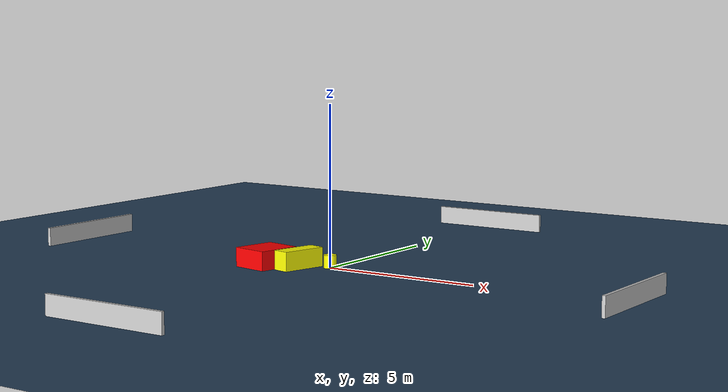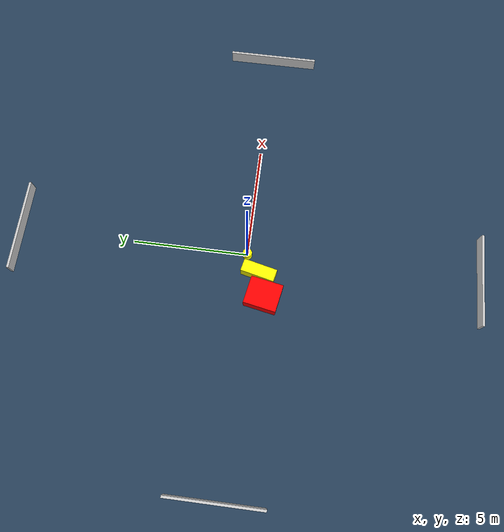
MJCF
<?xml version="1.0" ?>
<mujoco model="generated_environment">
  <option timestep="0.01" integrator="RK4" cone="elliptic"/>
  <default>
    <geom density="1"/>
  </default>
  <asset>
    <texture builtin="gradient" height="3072" name="skybox" rgb1="0.3 0.5 0.7" rgb2="0 0 0" type="skybox" width="512"/>
    <texture builtin="checker" height="300" name="groundplane" rgb1="0.2 0.3 0.4" rgb2="0.1 0.2 0.3" type="2d" width="300"/>
    <material name="groundplane" reflectance="0.2" texrepeat="5 5" texture="groundplane"/>
  </asset>
  <worldbody>
    <light dir="0 0 -1" directional="true" pos="0 0 1.5"/>
    <geom condim="3" friction="0.5 0.005 0.001" material="groundplane" name="floor" pos="0 0 0" size="0 0 0.05" type="plane"/>
    <body name="walls">
      <geom name="wall_1" condim="4" pos="-10.0 0.0 0.3" rgba="0.800000011920929 0.800000011920929 0.800000011920929 1.0" size="0.05 2.0 0.3" type="box"/>
      <geom name="wall_2" condim="4" pos="10.0 0.0 0.3" rgba="0.800000011920929 0.800000011920929 0.800000011920929 1.0" size="0.05 2.0 0.3" type="box"/>
      <geom name="wall_3" condim="4" pos="0.0 -10.0 0.3" rgba="0.800000011920929 0.800000011920929 0.800000011920929 1.0" size="2.0 0.05 0.3" type="box"/>
      <geom name="wall_4" condim="4" pos="0.0 10.0 0.3" rgba="0.800000011920929 0.800000011920929 0.800000011920929 1.0" size="2.0 0.05 0.3" type="box"/>
    </body>
    <body name="robot">
      <joint name="joint_x" type="slide" pos="0 0 0" axis="1 0 0"/>
      <joint name="joint_y" type="slide" pos="0 0 0" axis="0 1 0"/>
      <geom name="robot" type="cylinder" pos="0.0 0.0 0.2" size="0.2 0.2 0.0" mass="5.0" friction="1.0 0.005 0.0001" condim="4" rgba="1.0 1.0 0.0 1.0"/>
    </body>
    <body name="obstacle_1_movable">
      <geom name="obstacle_1_movable" condim="4" pos="-0.7675117623202289 -0.5823335807827704 0.3" euler="0 0 167.0182620366312" friction="0.0 0.005 0.001" rgba="1.0 1.0 0.0 1.0" size="0.26843982933435717 0.7328880572357481 0.3" type="box" mass="0.1"/>
      <joint type="free"/>
    </body>
    <body name="obstacle_2_static">
      <geom name="obstacle_2_static" condim="4" pos="-1.7719002212294224 -0.8915963986166359 0.3" euler="0 0 259.24506927070587" friction="0.0 0.005 0.001" rgba="1.0 0.0 0.0 1.0" size="0.7021960629860953 0.5989399526904167 0.3" type="box"/>
    </body>
  </worldbody>
  <actuator>
    <motor name="actuator_x" joint="joint_x" gear="1" ctrlrange="-1 1"/>
    <motor name="actuator_y" joint="joint_y" gear="1" ctrlrange="-1 1"/>
  </actuator>
</mujoco>
